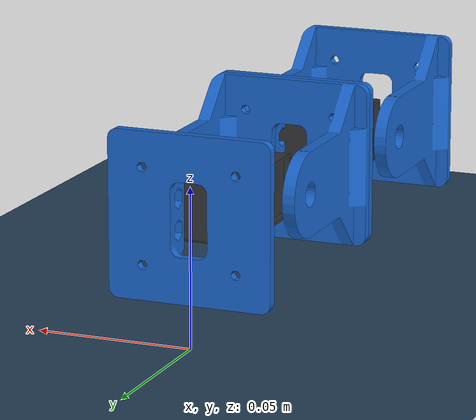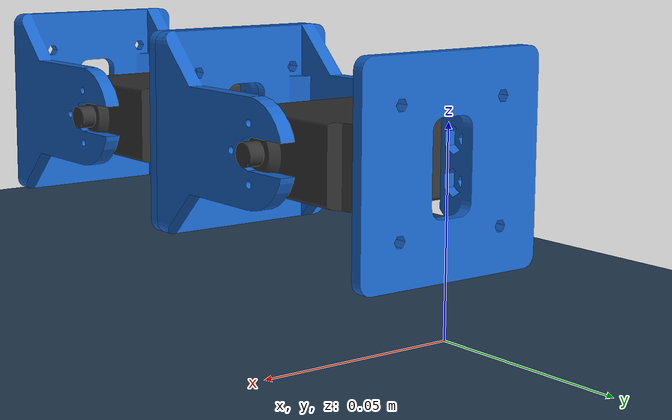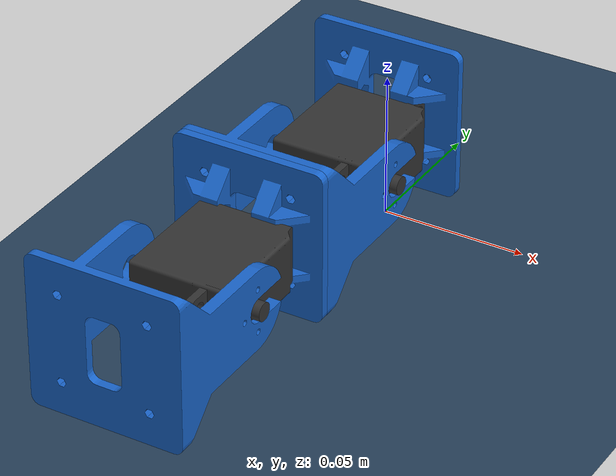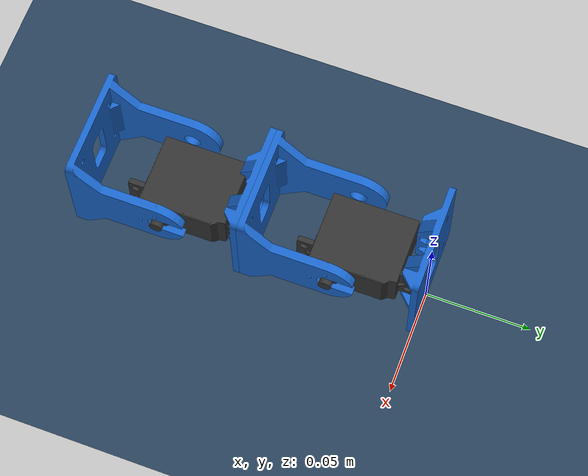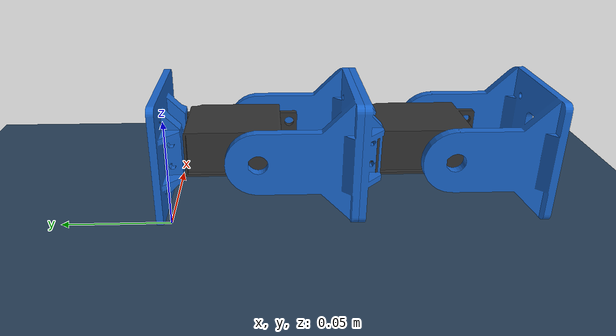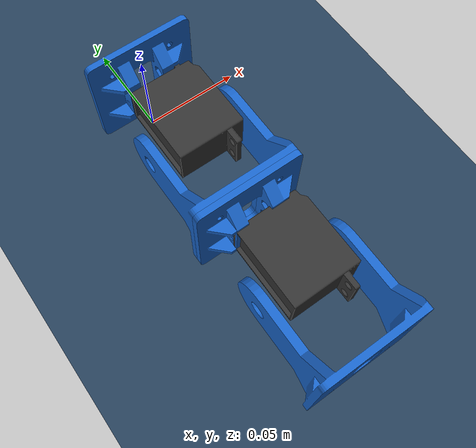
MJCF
<mujoco model="repyz">
    <option timestep="0.005" />

    <visual>
        <global azimuth="120" elevation="-20"/>
    </visual>

    <asset>
        <texture type="skybox" builtin="gradient" rgb1=".3 .5 .7" rgb2="0 0 0" width="32" height="512"/>
        <texture name="grid" type="2d" builtin="checker" rgb1=".1 .2 .3" rgb2=".2 .3 .4" width="300" height="300" mark="edge" markrgb=".2 .3 .4"/>
        <material name="grid" texture="grid" texrepeat="1 1" texuniform="true" reflectance=".2"/>

        <material name="plastic" rgba="0.1 0.4 0.8 1" specular="0.1" shininess="0.1"/>
        <material name="servo_mat" rgba="0.2 0.2 0.2 1" specular="0.1" shininess="0.1"/>
        <material name="horn_mat" rgba="0.8 0.8 0.8 1" specular="0.1" shininess="0.1"/>

        <mesh name="repyz_body" file="stl/repyz-body.stl" scale="0.001 0.001 0.001"/>
        <mesh name="repyz_head" file="stl/repyz-head.stl" scale="0.001 0.001 0.001"/>
        <mesh name="servo" file="stl/futaba_witout_lower_cover.stl" scale="0.001 0.001 0.001"/>
        <mesh name="cover" file="stl/servo_lower_cover_fake_shaft.stl" scale="0.001 0.001 0.001"/>
        <mesh name="horn" file="stl/futaba_rounded_horn.stl" scale="0.001 0.001 0.001"/>
    </asset>

    <worldbody>
        <!-- La luz se ha quitado porque mjviser inyecta las suyas propias y deslumbraba -->
        <light pos="0 0 1.5" dir="0 0 -1" directional="true"/>
        <geom name="floor" type="plane" size="0 0 .05" material="grid" condim="3"/>

        <!-- Rotamos todo 90 grados para que el módulo empiece en horizontal -->
        <!-- Y lo elevamos para que apoye en el suelo (Evitamos colisiones al inicio) -->
        <body name="link1" pos="0 0 0.04"  euler="90 0 0">
            <freejoint/>

            <geom type="mesh" mesh="repyz_body" euler="-0 0 0 " material="plastic" mass="0.05"/>

            <geom type="mesh" mesh="servo" pos="-0.012 0.0 0.03" euler="-90 90 180" material="servo_mat" mass="0.05"/>

            <body name="link2" pos="-0.0002789 0 0.08">
                <!-- Eje de rotación sobre Z, ya que el servo está vertical -->
                <joint name="servo_joint" type="hinge" pos="-0.01 0 -0.04" axis="1 0 0" range="-90 90" limited="true" damping="0.01"/>

                <!-- La cabeza repyz_head abrazará el servo por arriba y por abajo. -->
                <!-- Sus brazos se separan en X. Rotamos 90 en Y (euler="0 90 0") para que X apunte a Z. -->
                <!-- Ademas, como el spline esta arriba y el agujero puede estar invertido, si la cara no nos cuadra le damos offset. -->
                <geom type="mesh" mesh="repyz_head" pos="0 0 0" euler="180 0 0" material="plastic" mass="0.05"/>
                <geom type="mesh" mesh="repyz_body" pos="0 0 0.003" euler="-0 0 0 " material="plastic" mass="0.05"/>
                <geom type="mesh" mesh="servo" pos="-0.012 0.0 0.03" euler="-90 90 180" material="servo_mat" mass="0.05"/>

                <body name="link3" pos="-0.0002789 0 0.08">
                    <!-- Eje de rotación sobre Z, ya que el servo está vertical -->
                    <joint name="servo_joint2" type="hinge" pos="-0.01 0 -0.04" axis="1 0 0" range="-90 90" limited="true" damping="0.01"/>

                    <!-- La cabeza repyz_head abrazará el servo por arriba y por abajo. -->
                    <!-- Sus brazos se separan en X. Rotamos 90 en Y (euler="0 90 0") para que X apunte a Z. -->
                    <!-- Ademas, como el spline esta arriba y el agujero puede estar invertido, si la cara no nos cuadra le damos offset. -->
                    <geom type="mesh" mesh="repyz_head" pos="0 0 0" euler="180 0 0" material="plastic" mass="0.05"/>
                </body>

            </body>
        </body>
    </worldbody>

     <actuator>
        <position joint="servo_joint" name="servo_actuator" kp="0.8" ctrlrange="-1.5 1.5" ctrllimited="true"/>
        <position joint="servo_joint2" name="servo_actuator2" kp="0.8" ctrlrange="-1.5 1.5" ctrllimited="true"/>
    </actuator>

</mujoco>
